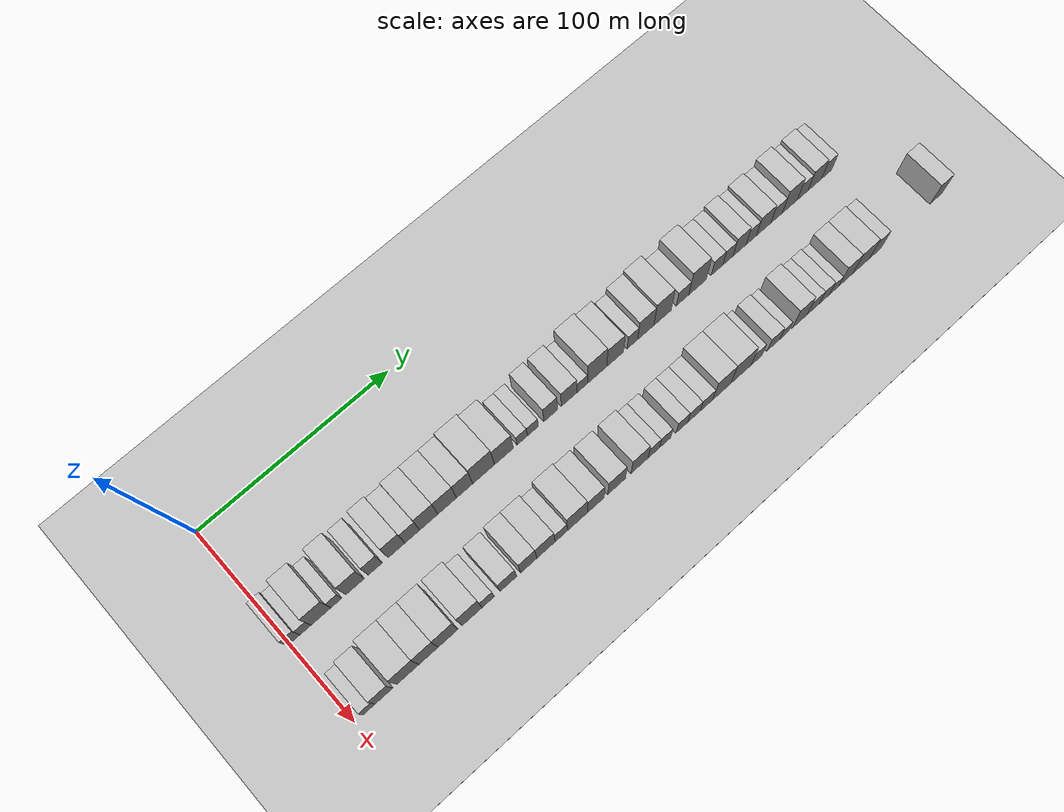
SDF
<sdf version="1.6">
 <world name="default">
  <include><name>ground_plane_1</name><uri>model://HANNAS_ground_plane</uri></include>
  <include>
   <name>ground_plane_2</name>
   <uri>model://HANNAS_ground_plane</uri>
   <pose>100 0 0  0 0 0</pose>
  </include>
  <model name="building_36">
   <static>1</static>
   <pose>50.0000 2.5396 0 0.000000 0.000000 0.000000</pose>
   <link name="link">
    <pose>0 0 7.50 0 0 0</pose>
    <collision name="collision"><geometry><box><size>20.0000 6.1050 15.0000</size></box></geometry></collision>
    <visual name="visual">
     <cast_shadows>0</cast_shadows>
     <geometry><box><size>20.0000 6.1050 15.0000</size></box></geometry>
     <material>
      <script>
       <uri>model://HANNAS_wall/materials/scripts</uri>
       <uri>model://HANNAS_wall/materials/textures</uri>
       <name>vrc/HANNAS_wall</name>
      </script>
     </material>
    </visual>
   </link>
  </model>
  <model name="building_37">
   <static>1</static>
   <pose>50.0000 8.3543 0 0.000000 0.000000 0.000000</pose>
   <link name="link">
    <pose>0 0 6.00 0 0 0</pose>
    <collision name="collision"><geometry><box><size>20.0000 5.5245 12.0000</size></box></geometry></collision>
    <visual name="visual">
     <cast_shadows>0</cast_shadows>
     <geometry><box><size>20.0000 5.5245 12.0000</size></box></geometry>
     <material>
      <script>
       <uri>model://HANNAS_wall/materials/scripts</uri>
       <uri>model://HANNAS_wall/materials/textures</uri>
       <name>vrc/HANNAS_wall</name>
      </script>
     </material>
    </visual>
   </link>
  </model>
  <model name="building_38">
   <static>1</static>
   <pose>50.0000 16.1037 0 0.000000 0.000000 0.000000</pose>
   <link name="link">
    <pose>0 0 10.50 0 0 0</pose>
    <collision name="collision"><geometry><box><size>20.0000 9.9742 21.0000</size></box></geometry></collision>
    <visual name="visual">
     <cast_shadows>0</cast_shadows>
     <geometry><box><size>20.0000 9.9742 21.0000</size></box></geometry>
     <material>
      <script>
       <uri>model://HANNAS_wall/materials/scripts</uri>
       <uri>model://HANNAS_wall/materials/textures</uri>
       <name>vrc/HANNAS_wall</name>
      </script>
     </material>
    </visual>
   </link>
  </model>
  <model name="building_39">
   <static>1</static>
   <pose>50.0000 23.8589 0 0.000000 0.000000 0.000000</pose>
   <link name="link">
    <pose>0 0 6.00 0 0 0</pose>
    <collision name="collision"><geometry><box><size>20.0000 5.5364 12.0000</size></box></geometry></collision>
    <visual name="visual">
     <cast_shadows>0</cast_shadows>
     <geometry><box><size>20.0000 5.5364 12.0000</size></box></geometry>
     <material>
      <script>
       <uri>model://HANNAS_wall/materials/scripts</uri>
       <uri>model://HANNAS_wall/materials/textures</uri>
       <name>vrc/HANNAS_wall</name>
      </script>
     </material>
    </visual>
   </link>
  </model>
  <model name="building_40">
   <static>1</static>
   <pose>50.0000 33.3413 0 0.000000 0.000000 0.000000</pose>
   <link name="link">
    <pose>0 0 10.50 0 0 0</pose>
    <collision name="collision"><geometry><box><size>20.0000 9.4282 21.0000</size></box></geometry></collision>
    <visual name="visual">
     <cast_shadows>0</cast_shadows>
     <geometry><box><size>20.0000 9.4282 21.0000</size></box></geometry>
     <material>
      <script>
       <uri>model://HANNAS_wall/materials/scripts</uri>
       <uri>model://HANNAS_wall/materials/textures</uri>
       <name>vrc/HANNAS_wall</name>
      </script>
     </material>
    </visual>
   </link>
  </model>
  <model name="building_41">
   <static>1</static>
   <pose>50.0000 43.6738 0 0.000000 0.000000 0.000000</pose>
   <link name="link">
    <pose>0 0 9.00 0 0 0</pose>
    <collision name="collision"><geometry><box><size>20.0000 7.2368 18.0000</size></box></geometry></collision>
    <visual name="visual">
     <cast_shadows>0</cast_shadows>
     <geometry><box><size>20.0000 7.2368 18.0000</size></box></geometry>
     <material>
      <script>
       <uri>model://HANNAS_wall/materials/scripts</uri>
       <uri>model://HANNAS_wall/materials/textures</uri>
       <name>vrc/HANNAS_wall</name>
      </script>
     </material>
    </visual>
   </link>
  </model>
  <model name="building_42">
   <static>1</static>
   <pose>50.0000 54.6382 0 0.000000 0.000000 0.000000</pose>
   <link name="link">
    <pose>0 0 10.50 0 0 0</pose>
    <collision name="collision"><geometry><box><size>20.0000 8.6921 21.0000</size></box></geometry></collision>
    <visual name="visual">
     <cast_shadows>0</cast_shadows>
     <geometry><box><size>20.0000 8.6921 21.0000</size></box></geometry>
     <material>
      <script>
       <uri>model://HANNAS_wall/materials/scripts</uri>
       <uri>model://HANNAS_wall/materials/textures</uri>
       <name>vrc/HANNAS_wall</name>
      </script>
     </material>
    </visual>
   </link>
  </model>
  <model name="building_43">
   <static>1</static>
   <pose>50.0000 62.8460 0 0.000000 0.000000 0.000000</pose>
   <link name="link">
    <pose>0 0 9.00 0 0 0</pose>
    <collision name="collision"><geometry><box><size>20.0000 7.7234 18.0000</size></box></geometry></collision>
    <visual name="visual">
     <cast_shadows>0</cast_shadows>
     <geometry><box><size>20.0000 7.7234 18.0000</size></box></geometry>
     <material>
      <script>
       <uri>model://HANNAS_wall/materials/scripts</uri>
       <uri>model://HANNAS_wall/materials/textures</uri>
       <name>vrc/HANNAS_wall</name>
      </script>
     </material>
    </visual>
   </link>
  </model>
  <model name="building_44">
   <static>1</static>
   <pose>50.0000 71.4762 0 0.000000 0.000000 0.000000</pose>
   <link name="link">
    <pose>0 0 10.50 0 0 0</pose>
    <collision name="collision"><geometry><box><size>20.0000 9.5371 21.0000</size></box></geometry></collision>
    <visual name="visual">
     <cast_shadows>0</cast_shadows>
     <geometry><box><size>20.0000 9.5371 21.0000</size></box></geometry>
     <material>
      <script>
       <uri>model://HANNAS_wall/materials/scripts</uri>
       <uri>model://HANNAS_wall/materials/textures</uri>
       <name>vrc/HANNAS_wall</name>
      </script>
     </material>
    </visual>
   </link>
  </model>
  <model name="building_45">
   <static>1</static>
   <pose>50.0000 81.1672 0 0.000000 0.000000 0.000000</pose>
   <link name="link">
    <pose>0 0 10.50 0 0 0</pose>
    <collision name="collision"><geometry><box><size>20.0000 9.8448 21.0000</size></box></geometry></collision>
    <visual name="visual">
     <cast_shadows>0</cast_shadows>
     <geometry><box><size>20.0000 9.8448 21.0000</size></box></geometry>
     <material>
      <script>
       <uri>model://HANNAS_wall/materials/scripts</uri>
       <uri>model://HANNAS_wall/materials/textures</uri>
       <name>vrc/HANNAS_wall</name>
      </script>
     </material>
    </visual>
   </link>
  </model>
  <model name="building_46">
   <static>1</static>
   <pose>50.0000 90.3996 0 0.000000 0.000000 0.000000</pose>
   <link name="link">
    <pose>0 0 10.50 0 0 0</pose>
    <collision name="collision"><geometry><box><size>20.0000 8.6202 21.0000</size></box></geometry></collision>
    <visual name="visual">
     <cast_shadows>0</cast_shadows>
     <geometry><box><size>20.0000 8.6202 21.0000</size></box></geometry>
     <material>
      <script>
       <uri>model://HANNAS_wall/materials/scripts</uri>
       <uri>model://HANNAS_wall/materials/textures</uri>
       <name>vrc/HANNAS_wall</name>
      </script>
     </material>
    </visual>
   </link>
  </model>
  <model name="building_47">
   <static>1</static>
   <pose>50.0000 100.5778 0 0.000000 0.000000 0.000000</pose>
   <link name="link">
    <pose>0 0 12.00 0 0 0</pose>
    <collision name="collision"><geometry><box><size>20.0000 11.7363 24.0000</size></box></geometry></collision>
    <visual name="visual">
     <cast_shadows>0</cast_shadows>
     <geometry><box><size>20.0000 11.7363 24.0000</size></box></geometry>
     <material>
      <script>
       <uri>model://HANNAS_wall/materials/scripts</uri>
       <uri>model://HANNAS_wall/materials/textures</uri>
       <name>vrc/HANNAS_wall</name>
      </script>
     </material>
    </visual>
   </link>
  </model>
  <model name="building_48">
   <static>1</static>
   <pose>50.0000 111.5434 0 0.000000 0.000000 0.000000</pose>
   <link name="link">
    <pose>0 0 10.50 0 0 0</pose>
    <collision name="collision"><geometry><box><size>20.0000 10.1949 21.0000</size></box></geometry></collision>
    <visual name="visual">
     <cast_shadows>0</cast_shadows>
     <geometry><box><size>20.0000 10.1949 21.0000</size></box></geometry>
     <material>
      <script>
       <uri>model://HANNAS_wall/materials/scripts</uri>
       <uri>model://HANNAS_wall/materials/textures</uri>
       <name>vrc/HANNAS_wall</name>
      </script>
     </material>
    </visual>
   </link>
  </model>
  <model name="building_49">
   <static>1</static>
   <pose>50.0000 121.4799 0 0.000000 0.000000 0.000000</pose>
   <link name="link">
    <pose>0 0 6.00 0 0 0</pose>
    <collision name="collision"><geometry><box><size>20.0000 5.6781 12.0000</size></box></geometry></collision>
    <visual name="visual">
     <cast_shadows>0</cast_shadows>
     <geometry><box><size>20.0000 5.6781 12.0000</size></box></geometry>
     <material>
      <script>
       <uri>model://HANNAS_wall/materials/scripts</uri>
       <uri>model://HANNAS_wall/materials/textures</uri>
       <name>vrc/HANNAS_wall</name>
      </script>
     </material>
    </visual>
   </link>
  </model>
  <model name="building_50">
   <static>1</static>
   <pose>50.0000 127.2958 0 0.000000 0.000000 0.000000</pose>
   <link name="link">
    <pose>0 0 6.00 0 0 0</pose>
    <collision name="collision"><geometry><box><size>20.0000 5.9538 12.0000</size></box></geometry></collision>
    <visual name="visual">
     <cast_shadows>0</cast_shadows>
     <geometry><box><size>20.0000 5.9538 12.0000</size></box></geometry>
     <material>
      <script>
       <uri>model://HANNAS_wall/materials/scripts</uri>
       <uri>model://HANNAS_wall/materials/textures</uri>
       <name>vrc/HANNAS_wall</name>
      </script>
     </material>
    </visual>
   </link>
  </model>
  <model name="building_51">
   <static>1</static>
   <pose>50.0000 137.0834 0 0.000000 0.000000 0.000000</pose>
   <link name="link">
    <pose>0 0 9.00 0 0 0</pose>
    <collision name="collision"><geometry><box><size>20.0000 7.6214 18.0000</size></box></geometry></collision>
    <visual name="visual">
     <cast_shadows>0</cast_shadows>
     <geometry><box><size>20.0000 7.6214 18.0000</size></box></geometry>
     <material>
      <script>
       <uri>model://HANNAS_wall/materials/scripts</uri>
       <uri>model://HANNAS_wall/materials/textures</uri>
       <name>vrc/HANNAS_wall</name>
      </script>
     </material>
    </visual>
   </link>
  </model>
  <model name="building_52">
   <static>1</static>
   <pose>50.0000 147.2627 0 0.000000 0.000000 0.000000</pose>
   <link name="link">
    <pose>0 0 9.00 0 0 0</pose>
    <collision name="collision"><geometry><box><size>20.0000 8.7371 18.0000</size></box></geometry></collision>
    <visual name="visual">
     <cast_shadows>0</cast_shadows>
     <geometry><box><size>20.0000 8.7371 18.0000</size></box></geometry>
     <material>
      <script>
       <uri>model://HANNAS_wall/materials/scripts</uri>
       <uri>model://HANNAS_wall/materials/textures</uri>
       <name>vrc/HANNAS_wall</name>
      </script>
     </material>
    </visual>
   </link>
  </model>
  <model name="building_53">
   <static>1</static>
   <pose>50.0000 154.4968 0 0.000000 0.000000 0.000000</pose>
   <link name="link">
    <pose>0 0 6.00 0 0 0</pose>
    <collision name="collision"><geometry><box><size>20.0000 5.7311 12.0000</size></box></geometry></collision>
    <visual name="visual">
     <cast_shadows>0</cast_shadows>
     <geometry><box><size>20.0000 5.7311 12.0000</size></box></geometry>
     <material>
      <script>
       <uri>model://HANNAS_wall/materials/scripts</uri>
       <uri>model://HANNAS_wall/materials/textures</uri>
       <name>vrc/HANNAS_wall</name>
      </script>
     </material>
    </visual>
   </link>
  </model>
  <model name="building_54">
   <static>1</static>
   <pose>50.0000 162.8468 0 0.000000 0.000000 0.000000</pose>
   <link name="link">
    <pose>0 0 12.00 0 0 0</pose>
    <collision name="collision"><geometry><box><size>20.0000 10.9688 24.0000</size></box></geometry></collision>
    <visual name="visual">
     <cast_shadows>0</cast_shadows>
     <geometry><box><size>20.0000 10.9688 24.0000</size></box></geometry>
     <material>
      <script>
       <uri>model://HANNAS_wall/materials/scripts</uri>
       <uri>model://HANNAS_wall/materials/textures</uri>
       <name>vrc/HANNAS_wall</name>
      </script>
     </material>
    </visual>
   </link>
  </model>
  <model name="building_55">
   <static>1</static>
   <pose>50.0000 173.0609 0 0.000000 0.000000 0.000000</pose>
   <link name="link">
    <pose>0 0 10.50 0 0 0</pose>
    <collision name="collision"><geometry><box><size>20.0000 9.4594 21.0000</size></box></geometry></collision>
    <visual name="visual">
     <cast_shadows>0</cast_shadows>
     <geometry><box><size>20.0000 9.4594 21.0000</size></box></geometry>
     <material>
      <script>
       <uri>model://HANNAS_wall/materials/scripts</uri>
       <uri>model://HANNAS_wall/materials/textures</uri>
       <name>vrc/HANNAS_wall</name>
      </script>
     </material>
    </visual>
   </link>
  </model>
  <model name="building_56">
   <static>1</static>
   <pose>50.0000 182.8200 0 0.000000 0.000000 0.000000</pose>
   <link name="link">
    <pose>0 0 7.50 0 0 0</pose>
    <collision name="collision"><geometry><box><size>20.0000 6.0588 15.0000</size></box></geometry></collision>
    <visual name="visual">
     <cast_shadows>0</cast_shadows>
     <geometry><box><size>20.0000 6.0588 15.0000</size></box></geometry>
     <material>
      <script>
       <uri>model://HANNAS_wall/materials/scripts</uri>
       <uri>model://HANNAS_wall/materials/textures</uri>
       <name>vrc/HANNAS_wall</name>
      </script>
     </material>
    </visual>
   </link>
  </model>
  <model name="building_57">
   <static>1</static>
   <pose>50.0000 190.5019 0 0.000000 0.000000 0.000000</pose>
   <link name="link">
    <pose>0 0 10.50 0 0 0</pose>
    <collision name="collision"><geometry><box><size>20.0000 9.3049 21.0000</size></box></geometry></collision>
    <visual name="visual">
     <cast_shadows>0</cast_shadows>
     <geometry><box><size>20.0000 9.3049 21.0000</size></box></geometry>
     <material>
      <script>
       <uri>model://HANNAS_wall/materials/scripts</uri>
       <uri>model://HANNAS_wall/materials/textures</uri>
       <name>vrc/HANNAS_wall</name>
      </script>
     </material>
    </visual>
   </link>
  </model>
  <model name="building_58">
   <static>1</static>
   <pose>50.0000 200.1157 0 0.000000 0.000000 0.000000</pose>
   <link name="link">
    <pose>0 0 12.00 0 0 0</pose>
    <collision name="collision"><geometry><box><size>20.0000 9.9226 24.0000</size></box></geometry></collision>
    <visual name="visual">
     <cast_shadows>0</cast_shadows>
     <geometry><box><size>20.0000 9.9226 24.0000</size></box></geometry>
     <material>
      <script>
       <uri>model://HANNAS_wall/materials/scripts</uri>
       <uri>model://HANNAS_wall/materials/textures</uri>
       <name>vrc/HANNAS_wall</name>
      </script>
     </material>
    </visual>
   </link>
  </model>
  <model name="building_59">
   <static>1</static>
   <pose>50.0000 211.7154 0 0.000000 0.000000 0.000000</pose>
   <link name="link">
    <pose>0 0 7.50 0 0 0</pose>
    <collision name="collision"><geometry><box><size>20.0000 7.2768 15.0000</size></box></geometry></collision>
    <visual name="visual">
     <cast_shadows>0</cast_shadows>
     <geometry><box><size>20.0000 7.2768 15.0000</size></box></geometry>
     <material>
      <script>
       <uri>model://HANNAS_wall/materials/scripts</uri>
       <uri>model://HANNAS_wall/materials/textures</uri>
       <name>vrc/HANNAS_wall</name>
      </script>
     </material>
    </visual>
   </link>
  </model>
  <model name="building_60">
   <static>1</static>
   <pose>50.0000 220.4443 0 0.000000 0.000000 0.000000</pose>
   <link name="link">
    <pose>0 0 12.00 0 0 0</pose>
    <collision name="collision"><geometry><box><size>20.0000 10.1811 24.0000</size></box></geometry></collision>
    <visual name="visual">
     <cast_shadows>0</cast_shadows>
     <geometry><box><size>20.0000 10.1811 24.0000</size></box></geometry>
     <material>
      <script>
       <uri>model://HANNAS_wall/materials/scripts</uri>
       <uri>model://HANNAS_wall/materials/textures</uri>
       <name>vrc/HANNAS_wall</name>
      </script>
     </material>
    </visual>
   </link>
  </model>
  <model name="building_61">
   <static>1</static>
   <pose>50.0000 231.9727 0 0.000000 0.000000 0.000000</pose>
   <link name="link">
    <pose>0 0 7.50 0 0 0</pose>
    <collision name="collision"><geometry><box><size>20.0000 6.8756 15.0000</size></box></geometry></collision>
    <visual name="visual">
     <cast_shadows>0</cast_shadows>
     <geometry><box><size>20.0000 6.8756 15.0000</size></box></geometry>
     <material>
      <script>
       <uri>model://HANNAS_wall/materials/scripts</uri>
       <uri>model://HANNAS_wall/materials/textures</uri>
       <name>vrc/HANNAS_wall</name>
      </script>
     </material>
    </visual>
   </link>
  </model>
  <model name="building_62">
   <static>1</static>
   <pose>50.0000 238.4234 0 0.000000 0.000000 0.000000</pose>
   <link name="link">
    <pose>0 0 7.50 0 0 0</pose>
    <collision name="collision"><geometry><box><size>20.0000 6.0259 15.0000</size></box></geometry></collision>
    <visual name="visual">
     <cast_shadows>0</cast_shadows>
     <geometry><box><size>20.0000 6.0259 15.0000</size></box></geometry>
     <material>
      <script>
       <uri>model://HANNAS_wall/materials/scripts</uri>
       <uri>model://HANNAS_wall/materials/textures</uri>
       <name>vrc/HANNAS_wall</name>
      </script>
     </material>
    </visual>
   </link>
  </model>
  <model name="building_63">
   <static>1</static>
   <pose>50.0000 245.3792 0 0.000000 0.000000 0.000000</pose>
   <link name="link">
    <pose>0 0 9.00 0 0 0</pose>
    <collision name="collision"><geometry><box><size>20.0000 7.8857 18.0000</size></box></geometry></collision>
    <visual name="visual">
     <cast_shadows>0</cast_shadows>
     <geometry><box><size>20.0000 7.8857 18.0000</size></box></geometry>
     <material>
      <script>
       <uri>model://HANNAS_wall/materials/scripts</uri>
       <uri>model://HANNAS_wall/materials/textures</uri>
       <name>vrc/HANNAS_wall</name>
      </script>
     </material>
    </visual>
   </link>
  </model>
  <model name="building_64">
   <static>1</static>
   <pose>50.0000 252.3377 0 0.000000 0.000000 0.000000</pose>
   <link name="link">
    <pose>0 0 7.50 0 0 0</pose>
    <collision name="collision"><geometry><box><size>20.0000 6.0313 15.0000</size></box></geometry></collision>
    <visual name="visual">
     <cast_shadows>0</cast_shadows>
     <geometry><box><size>20.0000 6.0313 15.0000</size></box></geometry>
     <material>
      <script>
       <uri>model://HANNAS_wall/materials/scripts</uri>
       <uri>model://HANNAS_wall/materials/textures</uri>
       <name>vrc/HANNAS_wall</name>
      </script>
     </material>
    </visual>
   </link>
  </model>
  <model name="building_65">
   <static>1</static>
   <pose>50.0000 259.7710 0 0.000000 0.000000 0.000000</pose>
   <link name="link">
    <pose>0 0 9.00 0 0 0</pose>
    <collision name="collision"><geometry><box><size>20.0000 8.8353 18.0000</size></box></geometry></collision>
    <visual name="visual">
     <cast_shadows>0</cast_shadows>
     <geometry><box><size>20.0000 8.8353 18.0000</size></box></geometry>
     <material>
      <script>
       <uri>model://HANNAS_wall/materials/scripts</uri>
       <uri>model://HANNAS_wall/materials/textures</uri>
       <name>vrc/HANNAS_wall</name>
      </script>
     </material>
    </visual>
   </link>
  </model>
  <model name="building_66">
   <static>1</static>
   <pose>50.0000 267.6369 0 0.000000 0.000000 0.000000</pose>
   <link name="link">
    <pose>0 0 7.50 0 0 0</pose>
    <collision name="collision"><geometry><box><size>20.0000 6.8966 15.0000</size></box></geometry></collision>
    <visual name="visual">
     <cast_shadows>0</cast_shadows>
     <geometry><box><size>20.0000 6.8966 15.0000</size></box></geometry>
     <material>
      <script>
       <uri>model://HANNAS_wall/materials/scripts</uri>
       <uri>model://HANNAS_wall/materials/textures</uri>
       <name>vrc/HANNAS_wall</name>
      </script>
     </material>
    </visual>
   </link>
  </model>
  <model name="building_67">
   <static>1</static>
   <pose>50.0000 275.6158 0 0.000000 0.000000 0.000000</pose>
   <link name="link">
    <pose>0 0 10.50 0 0 0</pose>
    <collision name="collision"><geometry><box><size>20.0000 9.0612 21.0000</size></box></geometry></collision>
    <visual name="visual">
     <cast_shadows>0</cast_shadows>
     <geometry><box><size>20.0000 9.0612 21.0000</size></box></geometry>
     <material>
      <script>
       <uri>model://HANNAS_wall/materials/scripts</uri>
       <uri>model://HANNAS_wall/materials/textures</uri>
       <name>vrc/HANNAS_wall</name>
      </script>
     </material>
    </visual>
   </link>
  </model>
  <model name="building_68">
   <static>1</static>
   <pose>50.0000 283.4367 0 0.000000 0.000000 0.000000</pose>
   <link name="link">
    <pose>0 0 7.50 0 0 0</pose>
    <collision name="collision"><geometry><box><size>20.0000 6.5805 15.0000</size></box></geometry></collision>
    <visual name="visual">
     <cast_shadows>0</cast_shadows>
     <geometry><box><size>20.0000 6.5805 15.0000</size></box></geometry>
     <material>
      <script>
       <uri>model://HANNAS_wall/materials/scripts</uri>
       <uri>model://HANNAS_wall/materials/textures</uri>
       <name>vrc/HANNAS_wall</name>
      </script>
     </material>
    </visual>
   </link>
  </model>
  <model name="building_69">
   <static>1</static>
   <pose>50.0000 290.9221 0 0.000000 0.000000 0.000000</pose>
   <link name="link">
    <pose>0 0 9.00 0 0 0</pose>
    <collision name="collision"><geometry><box><size>20.0000 8.3903 18.0000</size></box></geometry></collision>
    <visual name="visual">
     <cast_shadows>0</cast_shadows>
     <geometry><box><size>20.0000 8.3903 18.0000</size></box></geometry>
     <material>
      <script>
       <uri>model://HANNAS_wall/materials/scripts</uri>
       <uri>model://HANNAS_wall/materials/textures</uri>
       <name>vrc/HANNAS_wall</name>
      </script>
     </material>
    </visual>
   </link>
  </model>
  <model name="building_70">
   <static>1</static>
   <pose>50.0000 298.2505 0 0.000000 0.000000 0.000000</pose>
   <link name="link">
    <pose>0 0 7.50 0 0 0</pose>
    <collision name="collision"><geometry><box><size>20.0000 6.2666 15.0000</size></box></geometry></collision>
    <visual name="visual">
     <cast_shadows>0</cast_shadows>
     <geometry><box><size>20.0000 6.2666 15.0000</size></box></geometry>
     <material>
      <script>
       <uri>model://HANNAS_wall/materials/scripts</uri>
       <uri>model://HANNAS_wall/materials/textures</uri>
       <name>vrc/HANNAS_wall</name>
      </script>
     </material>
    </visual>
   </link>
  </model>
  <model name="building_105">
   <static>1</static>
   <pose>90.0000 7.4750 0 0.000000 0.000000 0.000000</pose>
   <link name="link">
    <pose>0 0 6.00 0 0 0</pose>
    <collision name="collision"><geometry><box><size>20.0000 5.9233 12.0000</size></box></geometry></collision>
    <visual name="visual">
     <cast_shadows>0</cast_shadows>
     <geometry><box><size>20.0000 5.9233 12.0000</size></box></geometry>
     <material>
      <script>
       <uri>model://HANNAS_wall/materials/scripts</uri>
       <uri>model://HANNAS_wall/materials/textures</uri>
       <name>vrc/HANNAS_wall</name>
      </script>
     </material>
    </visual>
   </link>
  </model>
  <model name="building_106">
   <static>1</static>
   <pose>90.0000 14.8779 0 0.000000 0.000000 0.000000</pose>
   <link name="link">
    <pose>0 0 9.00 0 0 0</pose>
    <collision name="collision"><geometry><box><size>20.0000 8.8825 18.0000</size></box></geometry></collision>
    <visual name="visual">
     <cast_shadows>0</cast_shadows>
     <geometry><box><size>20.0000 8.8825 18.0000</size></box></geometry>
     <material>
      <script>
       <uri>model://HANNAS_wall/materials/scripts</uri>
       <uri>model://HANNAS_wall/materials/textures</uri>
       <name>vrc/HANNAS_wall</name>
      </script>
     </material>
    </visual>
   </link>
  </model>
  <model name="building_107">
   <static>1</static>
   <pose>90.0000 26.9058 0 0.000000 0.000000 0.000000</pose>
   <link name="link">
    <pose>0 0 12.00 0 0 0</pose>
    <collision name="collision"><geometry><box><size>20.0000 11.1733 24.0000</size></box></geometry></collision>
    <visual name="visual">
     <cast_shadows>0</cast_shadows>
     <geometry><box><size>20.0000 11.1733 24.0000</size></box></geometry>
     <material>
      <script>
       <uri>model://HANNAS_wall/materials/scripts</uri>
       <uri>model://HANNAS_wall/materials/textures</uri>
       <name>vrc/HANNAS_wall</name>
      </script>
     </material>
    </visual>
   </link>
  </model>
  <model name="building_108">
   <static>1</static>
   <pose>90.0000 37.3984 0 0.000000 0.000000 0.000000</pose>
   <link name="link">
    <pose>0 0 12.00 0 0 0</pose>
    <collision name="collision"><geometry><box><size>20.0000 9.8119 24.0000</size></box></geometry></collision>
    <visual name="visual">
     <cast_shadows>0</cast_shadows>
     <geometry><box><size>20.0000 9.8119 24.0000</size></box></geometry>
     <material>
      <script>
       <uri>model://HANNAS_wall/materials/scripts</uri>
       <uri>model://HANNAS_wall/materials/textures</uri>
       <name>vrc/HANNAS_wall</name>
      </script>
     </material>
    </visual>
   </link>
  </model>
  <model name="building_109">
   <static>1</static>
   <pose>90.0000 47.3641 0 0.000000 0.000000 0.000000</pose>
   <link name="link">
    <pose>0 0 12.00 0 0 0</pose>
    <collision name="collision"><geometry><box><size>20.0000 10.1194 24.0000</size></box></geometry></collision>
    <visual name="visual">
     <cast_shadows>0</cast_shadows>
     <geometry><box><size>20.0000 10.1194 24.0000</size></box></geometry>
     <material>
      <script>
       <uri>model://HANNAS_wall/materials/scripts</uri>
       <uri>model://HANNAS_wall/materials/textures</uri>
       <name>vrc/HANNAS_wall</name>
      </script>
     </material>
    </visual>
   </link>
  </model>
  <model name="building_110">
   <static>1</static>
   <pose>90.0000 59.6481 0 0.000000 0.000000 0.000000</pose>
   <link name="link">
    <pose>0 0 12.00 0 0 0</pose>
    <collision name="collision"><geometry><box><size>20.0000 10.4486 24.0000</size></box></geometry></collision>
    <visual name="visual">
     <cast_shadows>0</cast_shadows>
     <geometry><box><size>20.0000 10.4486 24.0000</size></box></geometry>
     <material>
      <script>
       <uri>model://HANNAS_wall/materials/scripts</uri>
       <uri>model://HANNAS_wall/materials/textures</uri>
       <name>vrc/HANNAS_wall</name>
      </script>
     </material>
    </visual>
   </link>
  </model>
  <model name="building_111">
   <static>1</static>
   <pose>90.0000 68.0608 0 0.000000 0.000000 0.000000</pose>
   <link name="link">
    <pose>0 0 7.50 0 0 0</pose>
    <collision name="collision"><geometry><box><size>20.0000 6.3768 15.0000</size></box></geometry></collision>
    <visual name="visual">
     <cast_shadows>0</cast_shadows>
     <geometry><box><size>20.0000 6.3768 15.0000</size></box></geometry>
     <material>
      <script>
       <uri>model://HANNAS_wall/materials/scripts</uri>
       <uri>model://HANNAS_wall/materials/textures</uri>
       <name>vrc/HANNAS_wall</name>
      </script>
     </material>
    </visual>
   </link>
  </model>
  <model name="building_112">
   <static>1</static>
   <pose>90.0000 78.6426 0 0.000000 0.000000 0.000000</pose>
   <link name="link">
    <pose>0 0 9.00 0 0 0</pose>
    <collision name="collision"><geometry><box><size>20.0000 8.7869 18.0000</size></box></geometry></collision>
    <visual name="visual">
     <cast_shadows>0</cast_shadows>
     <geometry><box><size>20.0000 8.7869 18.0000</size></box></geometry>
     <material>
      <script>
       <uri>model://HANNAS_wall/materials/scripts</uri>
       <uri>model://HANNAS_wall/materials/textures</uri>
       <name>vrc/HANNAS_wall</name>
      </script>
     </material>
    </visual>
   </link>
  </model>
  <model name="building_113">
   <static>1</static>
   <pose>90.0000 89.3185 0 0.000000 0.000000 0.000000</pose>
   <link name="link">
    <pose>0 0 10.50 0 0 0</pose>
    <collision name="collision"><geometry><box><size>20.0000 8.5649 21.0000</size></box></geometry></collision>
    <visual name="visual">
     <cast_shadows>0</cast_shadows>
     <geometry><box><size>20.0000 8.5649 21.0000</size></box></geometry>
     <material>
      <script>
       <uri>model://HANNAS_wall/materials/scripts</uri>
       <uri>model://HANNAS_wall/materials/textures</uri>
       <name>vrc/HANNAS_wall</name>
      </script>
     </material>
    </visual>
   </link>
  </model>
  <model name="building_114">
   <static>1</static>
   <pose>90.0000 98.4926 0 0.000000 0.000000 0.000000</pose>
   <link name="link">
    <pose>0 0 10.50 0 0 0</pose>
    <collision name="collision"><geometry><box><size>20.0000 9.7833 21.0000</size></box></geometry></collision>
    <visual name="visual">
     <cast_shadows>0</cast_shadows>
     <geometry><box><size>20.0000 9.7833 21.0000</size></box></geometry>
     <material>
      <script>
       <uri>model://HANNAS_wall/materials/scripts</uri>
       <uri>model://HANNAS_wall/materials/textures</uri>
       <name>vrc/HANNAS_wall</name>
      </script>
     </material>
    </visual>
   </link>
  </model>
  <model name="building_115">
   <static>1</static>
   <pose>90.0000 106.6974 0 0.000000 0.000000 0.000000</pose>
   <link name="link">
    <pose>0 0 7.50 0 0 0</pose>
    <collision name="collision"><geometry><box><size>20.0000 6.6263 15.0000</size></box></geometry></collision>
    <visual name="visual">
     <cast_shadows>0</cast_shadows>
     <geometry><box><size>20.0000 6.6263 15.0000</size></box></geometry>
     <material>
      <script>
       <uri>model://HANNAS_wall/materials/scripts</uri>
       <uri>model://HANNAS_wall/materials/textures</uri>
       <name>vrc/HANNAS_wall</name>
      </script>
     </material>
    </visual>
   </link>
  </model>
  <model name="building_116">
   <static>1</static>
   <pose>90.0000 115.4018 0 0.000000 0.000000 0.000000</pose>
   <link name="link">
    <pose>0 0 12.00 0 0 0</pose>
    <collision name="collision"><geometry><box><size>20.0000 10.7824 24.0000</size></box></geometry></collision>
    <visual name="visual">
     <cast_shadows>0</cast_shadows>
     <geometry><box><size>20.0000 10.7824 24.0000</size></box></geometry>
     <material>
      <script>
       <uri>model://HANNAS_wall/materials/scripts</uri>
       <uri>model://HANNAS_wall/materials/textures</uri>
       <name>vrc/HANNAS_wall</name>
      </script>
     </material>
    </visual>
   </link>
  </model>
  <model name="building_117">
   <static>1</static>
   <pose>90.0000 125.3469 0 0.000000 0.000000 0.000000</pose>
   <link name="link">
    <pose>0 0 10.50 0 0 0</pose>
    <collision name="collision"><geometry><box><size>20.0000 9.1078 21.0000</size></box></geometry></collision>
    <visual name="visual">
     <cast_shadows>0</cast_shadows>
     <geometry><box><size>20.0000 9.1078 21.0000</size></box></geometry>
     <material>
      <script>
       <uri>model://HANNAS_wall/materials/scripts</uri>
       <uri>model://HANNAS_wall/materials/textures</uri>
       <name>vrc/HANNAS_wall</name>
      </script>
     </material>
    </visual>
   </link>
  </model>
  <model name="building_118">
   <static>1</static>
   <pose>90.0000 136.7543 0 0.000000 0.000000 0.000000</pose>
   <link name="link">
    <pose>0 0 10.50 0 0 0</pose>
    <collision name="collision"><geometry><box><size>20.0000 9.7069 21.0000</size></box></geometry></collision>
    <visual name="visual">
     <cast_shadows>0</cast_shadows>
     <geometry><box><size>20.0000 9.7069 21.0000</size></box></geometry>
     <material>
      <script>
       <uri>model://HANNAS_wall/materials/scripts</uri>
       <uri>model://HANNAS_wall/materials/textures</uri>
       <name>vrc/HANNAS_wall</name>
      </script>
     </material>
    </visual>
   </link>
  </model>
  <model name="building_119">
   <static>1</static>
   <pose>90.0000 149.3537 0 0.000000 0.000000 0.000000</pose>
   <link name="link">
    <pose>0 0 10.50 0 0 0</pose>
    <collision name="collision"><geometry><box><size>20.0000 9.4919 21.0000</size></box></geometry></collision>
    <visual name="visual">
     <cast_shadows>0</cast_shadows>
     <geometry><box><size>20.0000 9.4919 21.0000</size></box></geometry>
     <material>
      <script>
       <uri>model://HANNAS_wall/materials/scripts</uri>
       <uri>model://HANNAS_wall/materials/textures</uri>
       <name>vrc/HANNAS_wall</name>
      </script>
     </material>
    </visual>
   </link>
  </model>
  <model name="building_120">
   <static>1</static>
   <pose>90.0000 157.2934 0 0.000000 0.000000 0.000000</pose>
   <link name="link">
    <pose>0 0 7.50 0 0 0</pose>
    <collision name="collision"><geometry><box><size>20.0000 6.3876 15.0000</size></box></geometry></collision>
    <visual name="visual">
     <cast_shadows>0</cast_shadows>
     <geometry><box><size>20.0000 6.3876 15.0000</size></box></geometry>
     <material>
      <script>
       <uri>model://HANNAS_wall/materials/scripts</uri>
       <uri>model://HANNAS_wall/materials/textures</uri>
       <name>vrc/HANNAS_wall</name>
      </script>
     </material>
    </visual>
   </link>
  </model>
  <model name="building_121">
   <static>1</static>
   <pose>90.0000 163.6279 0 0.000000 0.000000 0.000000</pose>
   <link name="link">
    <pose>0 0 7.50 0 0 0</pose>
    <collision name="collision"><geometry><box><size>20.0000 6.2815 15.0000</size></box></geometry></collision>
    <visual name="visual">
     <cast_shadows>0</cast_shadows>
     <geometry><box><size>20.0000 6.2815 15.0000</size></box></geometry>
     <material>
      <script>
       <uri>model://HANNAS_wall/materials/scripts</uri>
       <uri>model://HANNAS_wall/materials/textures</uri>
       <name>vrc/HANNAS_wall</name>
      </script>
     </material>
    </visual>
   </link>
  </model>
  <model name="building_122">
   <static>1</static>
   <pose>90.0000 173.0417 0 0.000000 0.000000 0.000000</pose>
   <link name="link">
    <pose>0 0 7.50 0 0 0</pose>
    <collision name="collision"><geometry><box><size>20.0000 6.5460 15.0000</size></box></geometry></collision>
    <visual name="visual">
     <cast_shadows>0</cast_shadows>
     <geometry><box><size>20.0000 6.5460 15.0000</size></box></geometry>
     <material>
      <script>
       <uri>model://HANNAS_wall/materials/scripts</uri>
       <uri>model://HANNAS_wall/materials/textures</uri>
       <name>vrc/HANNAS_wall</name>
      </script>
     </material>
    </visual>
   </link>
  </model>
  <model name="building_123">
   <static>1</static>
   <pose>90.0000 179.8516 0 0.000000 0.000000 0.000000</pose>
   <link name="link">
    <pose>0 0 7.50 0 0 0</pose>
    <collision name="collision"><geometry><box><size>20.0000 7.0739 15.0000</size></box></geometry></collision>
    <visual name="visual">
     <cast_shadows>0</cast_shadows>
     <geometry><box><size>20.0000 7.0739 15.0000</size></box></geometry>
     <material>
      <script>
       <uri>model://HANNAS_wall/materials/scripts</uri>
       <uri>model://HANNAS_wall/materials/textures</uri>
       <name>vrc/HANNAS_wall</name>
      </script>
     </material>
    </visual>
   </link>
  </model>
  <model name="building_124">
   <static>1</static>
   <pose>90.0000 186.9443 0 0.000000 0.000000 0.000000</pose>
   <link name="link">
    <pose>0 0 7.50 0 0 0</pose>
    <collision name="collision"><geometry><box><size>20.0000 7.1115 15.0000</size></box></geometry></collision>
    <visual name="visual">
     <cast_shadows>0</cast_shadows>
     <geometry><box><size>20.0000 7.1115 15.0000</size></box></geometry>
     <material>
      <script>
       <uri>model://HANNAS_wall/materials/scripts</uri>
       <uri>model://HANNAS_wall/materials/textures</uri>
       <name>vrc/HANNAS_wall</name>
      </script>
     </material>
    </visual>
   </link>
  </model>
  <model name="building_125">
   <static>1</static>
   <pose>90.0000 195.7588 0 0.000000 0.000000 0.000000</pose>
   <link name="link">
    <pose>0 0 12.00 0 0 0</pose>
    <collision name="collision"><geometry><box><size>20.0000 10.5176 24.0000</size></box></geometry></collision>
    <visual name="visual">
     <cast_shadows>0</cast_shadows>
     <geometry><box><size>20.0000 10.5176 24.0000</size></box></geometry>
     <material>
      <script>
       <uri>model://HANNAS_wall/materials/scripts</uri>
       <uri>model://HANNAS_wall/materials/textures</uri>
       <name>vrc/HANNAS_wall</name>
      </script>
     </material>
    </visual>
   </link>
  </model>
  <model name="building_126">
   <static>1</static>
   <pose>90.0000 206.8701 0 0.000000 0.000000 0.000000</pose>
   <link name="link">
    <pose>0 0 12.00 0 0 0</pose>
    <collision name="collision"><geometry><box><size>20.0000 11.7050 24.0000</size></box></geometry></collision>
    <visual name="visual">
     <cast_shadows>0</cast_shadows>
     <geometry><box><size>20.0000 11.7050 24.0000</size></box></geometry>
     <material>
      <script>
       <uri>model://HANNAS_wall/materials/scripts</uri>
       <uri>model://HANNAS_wall/materials/textures</uri>
       <name>vrc/HANNAS_wall</name>
      </script>
     </material>
    </visual>
   </link>
  </model>
  <model name="building_127">
   <static>1</static>
   <pose>90.0000 215.8851 0 0.000000 0.000000 0.000000</pose>
   <link name="link">
    <pose>0 0 7.50 0 0 0</pose>
    <collision name="collision"><geometry><box><size>20.0000 6.3249 15.0000</size></box></geometry></collision>
    <visual name="visual">
     <cast_shadows>0</cast_shadows>
     <geometry><box><size>20.0000 6.3249 15.0000</size></box></geometry>
     <material>
      <script>
       <uri>model://HANNAS_wall/materials/scripts</uri>
       <uri>model://HANNAS_wall/materials/textures</uri>
       <name>vrc/HANNAS_wall</name>
      </script>
     </material>
    </visual>
   </link>
  </model>
  <model name="building_128">
   <static>1</static>
   <pose>90.0000 225.7334 0 0.000000 0.000000 0.000000</pose>
   <link name="link">
    <pose>0 0 7.50 0 0 0</pose>
    <collision name="collision"><geometry><box><size>20.0000 7.3717 15.0000</size></box></geometry></collision>
    <visual name="visual">
     <cast_shadows>0</cast_shadows>
     <geometry><box><size>20.0000 7.3717 15.0000</size></box></geometry>
     <material>
      <script>
       <uri>model://HANNAS_wall/materials/scripts</uri>
       <uri>model://HANNAS_wall/materials/textures</uri>
       <name>vrc/HANNAS_wall</name>
      </script>
     </material>
    </visual>
   </link>
  </model>
  <model name="building_129">
   <static>1</static>
   <pose>90.0000 232.1577 0 0.000000 0.000000 0.000000</pose>
   <link name="link">
    <pose>0 0 6.00 0 0 0</pose>
    <collision name="collision"><geometry><box><size>20.0000 5.4769 12.0000</size></box></geometry></collision>
    <visual name="visual">
     <cast_shadows>0</cast_shadows>
     <geometry><box><size>20.0000 5.4769 12.0000</size></box></geometry>
     <material>
      <script>
       <uri>model://HANNAS_wall/materials/scripts</uri>
       <uri>model://HANNAS_wall/materials/textures</uri>
       <name>vrc/HANNAS_wall</name>
      </script>
     </material>
    </visual>
   </link>
  </model>
  <model name="building_130">
   <static>1</static>
   <pose>90.0000 241.3130 0 0.000000 0.000000 0.000000</pose>
   <link name="link">
    <pose>0 0 10.50 0 0 0</pose>
    <collision name="collision"><geometry><box><size>20.0000 8.8336 21.0000</size></box></geometry></collision>
    <visual name="visual">
     <cast_shadows>0</cast_shadows>
     <geometry><box><size>20.0000 8.8336 21.0000</size></box></geometry>
     <material>
      <script>
       <uri>model://HANNAS_wall/materials/scripts</uri>
       <uri>model://HANNAS_wall/materials/textures</uri>
       <name>vrc/HANNAS_wall</name>
      </script>
     </material>
    </visual>
   </link>
  </model>
  <model name="building_131">
   <static>1</static>
   <pose>90.0000 249.3678 0 0.000000 0.000000 0.000000</pose>
   <link name="link">
    <pose>0 0 7.50 0 0 0</pose>
    <collision name="collision"><geometry><box><size>20.0000 7.2760 15.0000</size></box></geometry></collision>
    <visual name="visual">
     <cast_shadows>0</cast_shadows>
     <geometry><box><size>20.0000 7.2760 15.0000</size></box></geometry>
     <material>
      <script>
       <uri>model://HANNAS_wall/materials/scripts</uri>
       <uri>model://HANNAS_wall/materials/textures</uri>
       <name>vrc/HANNAS_wall</name>
      </script>
     </material>
    </visual>
   </link>
  </model>
  <model name="building_132">
   <static>1</static>
   <pose>90.0000 256.0085 0 0.000000 0.000000 0.000000</pose>
   <link name="link">
    <pose>0 0 7.50 0 0 0</pose>
    <collision name="collision"><geometry><box><size>20.0000 6.0055 15.0000</size></box></geometry></collision>
    <visual name="visual">
     <cast_shadows>0</cast_shadows>
     <geometry><box><size>20.0000 6.0055 15.0000</size></box></geometry>
     <material>
      <script>
       <uri>model://HANNAS_wall/materials/scripts</uri>
       <uri>model://HANNAS_wall/materials/textures</uri>
       <name>vrc/HANNAS_wall</name>
      </script>
     </material>
    </visual>
   </link>
  </model>
  <model name="building_133">
   <static>1</static>
   <pose>90.0000 261.7937 0 0.000000 0.000000 0.000000</pose>
   <link name="link">
    <pose>0 0 6.00 0 0 0</pose>
    <collision name="collision"><geometry><box><size>20.0000 5.5649 12.0000</size></box></geometry></collision>
    <visual name="visual">
     <cast_shadows>0</cast_shadows>
     <geometry><box><size>20.0000 5.5649 12.0000</size></box></geometry>
     <material>
      <script>
       <uri>model://HANNAS_wall/materials/scripts</uri>
       <uri>model://HANNAS_wall/materials/textures</uri>
       <name>vrc/HANNAS_wall</name>
      </script>
     </material>
    </visual>
   </link>
  </model>
  <model name="building_134">
   <static>1</static>
   <pose>90.0000 268.9160 0 0.000000 0.000000 0.000000</pose>
   <link name="link">
    <pose>0 0 10.50 0 0 0</pose>
    <collision name="collision"><geometry><box><size>20.0000 8.6796 21.0000</size></box></geometry></collision>
    <visual name="visual">
     <cast_shadows>0</cast_shadows>
     <geometry><box><size>20.0000 8.6796 21.0000</size></box></geometry>
     <material>
      <script>
       <uri>model://HANNAS_wall/materials/scripts</uri>
       <uri>model://HANNAS_wall/materials/textures</uri>
       <name>vrc/HANNAS_wall</name>
      </script>
     </material>
    </visual>
   </link>
  </model>
  <model name="building_135">
   <static>1</static>
   <pose>90.0000 278.3141 0 0.000000 0.000000 0.000000</pose>
   <link name="link">
    <pose>0 0 10.50 0 0 0</pose>
    <collision name="collision"><geometry><box><size>20.0000 10.1166 21.0000</size></box></geometry></collision>
    <visual name="visual">
     <cast_shadows>0</cast_shadows>
     <geometry><box><size>20.0000 10.1166 21.0000</size></box></geometry>
     <material>
      <script>
       <uri>model://HANNAS_wall/materials/scripts</uri>
       <uri>model://HANNAS_wall/materials/textures</uri>
       <name>vrc/HANNAS_wall</name>
      </script>
     </material>
    </visual>
   </link>
  </model>
  <model name="building_136">
   <static>1</static>
   <pose>90.0000 287.0157 0 0.000000 0.000000 0.000000</pose>
   <link name="link">
    <pose>0 0 9.00 0 0 0</pose>
    <collision name="collision"><geometry><box><size>20.0000 7.2866 18.0000</size></box></geometry></collision>
    <visual name="visual">
     <cast_shadows>0</cast_shadows>
     <geometry><box><size>20.0000 7.2866 18.0000</size></box></geometry>
     <material>
      <script>
       <uri>model://HANNAS_wall/materials/scripts</uri>
       <uri>model://HANNAS_wall/materials/textures</uri>
       <name>vrc/HANNAS_wall</name>
      </script>
     </material>
    </visual>
   </link>
  </model>
  <model name="building_137">
   <static>1</static>
   <pose>90.0000 325.1508 0 0.000000 0.000000 0.000000</pose>
   <link name="link">
    <pose>0 0 9.00 0 0 0</pose>
    <collision name="collision"><geometry><box><size>20.0000 7.6612 18.0000</size></box></geometry></collision>
    <visual name="visual">
     <cast_shadows>0</cast_shadows>
     <geometry><box><size>20.0000 7.6612 18.0000</size></box></geometry>
     <material>
      <script>
       <uri>model://HANNAS_wall/materials/scripts</uri>
       <uri>model://HANNAS_wall/materials/textures</uri>
       <name>vrc/HANNAS_wall</name>
      </script>
     </material>
    </visual>
   </link>
  </model>
 </world>
</sdf>
